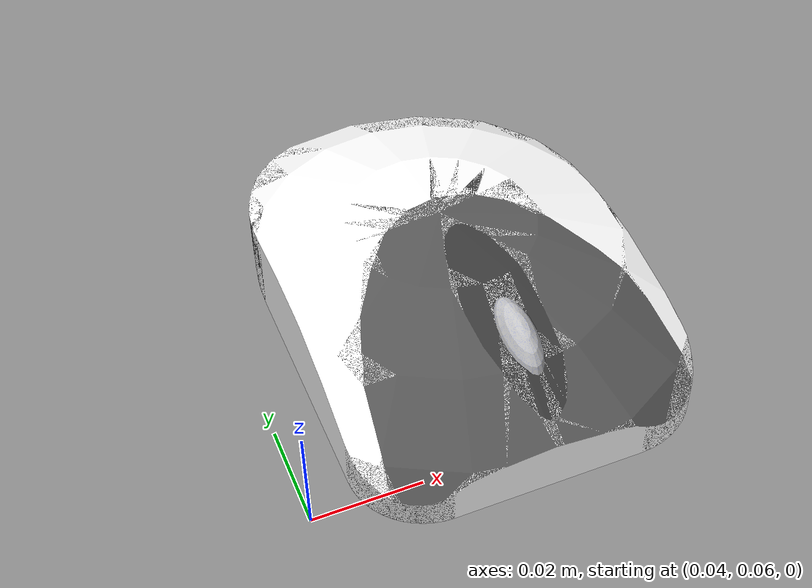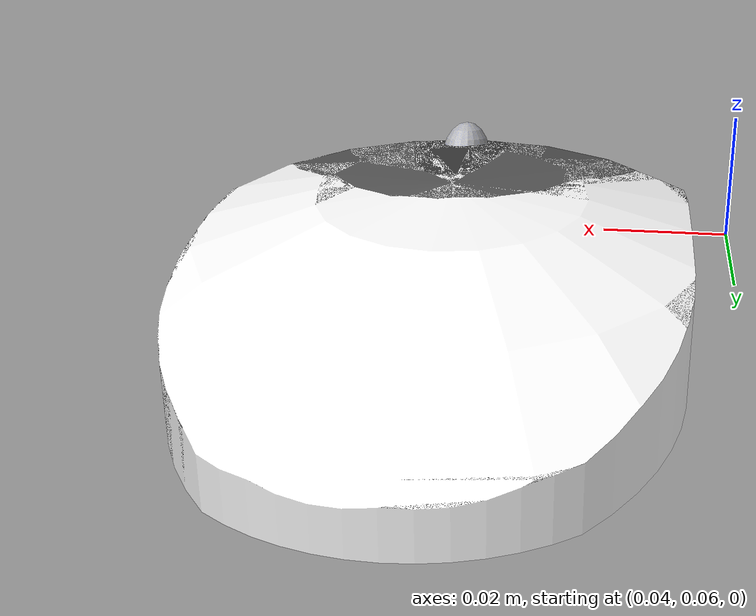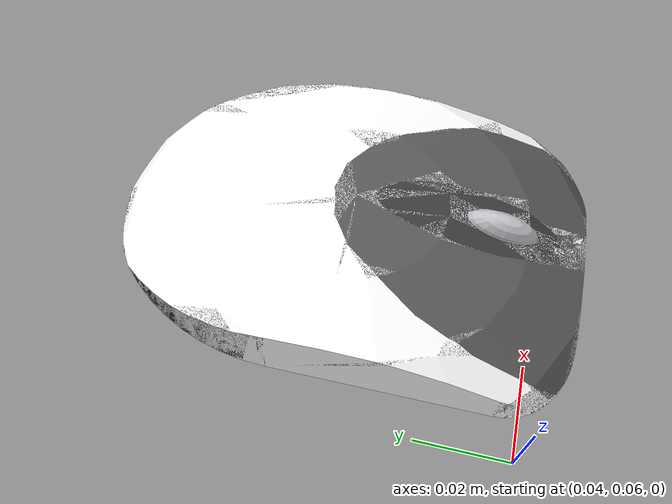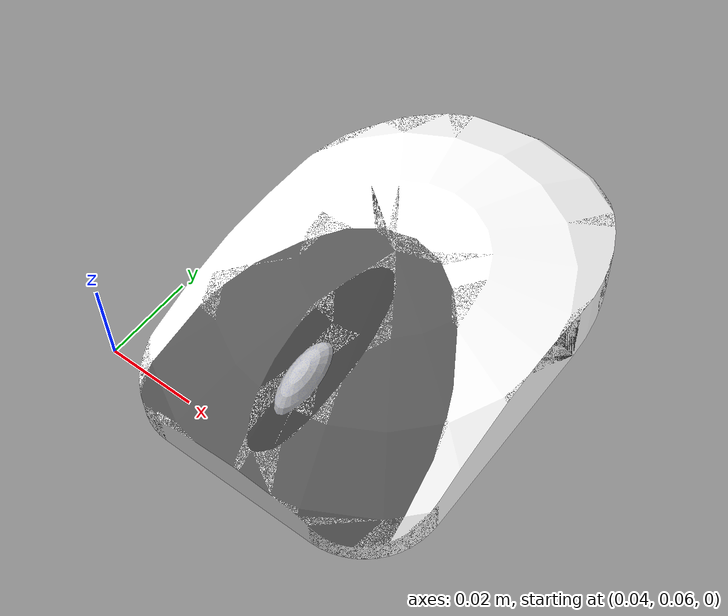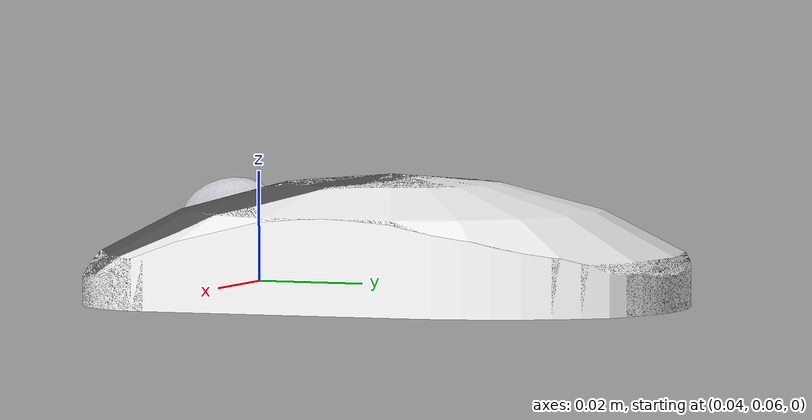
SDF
<?xml version="1.0" ?>
<sdf version="1.5">
  <model name="mug">
    <link name="link">
      <inertial>
        <mass>0.16</mass>
      </inertial>
      <collision name="collision">
        <geometry>
          <mesh>
            <uri>/home/olorin/Desktop/IISc/ROS-ARM-Planning/src/motoman_simulator/motoman_gazebo/sdf/mouse/meshes/model.dae</uri>
            <scale>0.02 0.02 0.02</scale>
          </mesh>
        </geometry>
      </collision>
      <visual name="visual">
        <geometry>
          <mesh>
            <uri>/home/olorin/Desktop/IISc/ROS-ARM-Planning/src/motoman_simulator/motoman_gazebo/sdf/mouse/meshes/model.dae</uri>
            <scale>0.02 0.02 0.02</scale>
          </mesh>
        </geometry>
      </visual>
    </link>
  </model>
</sdf>
